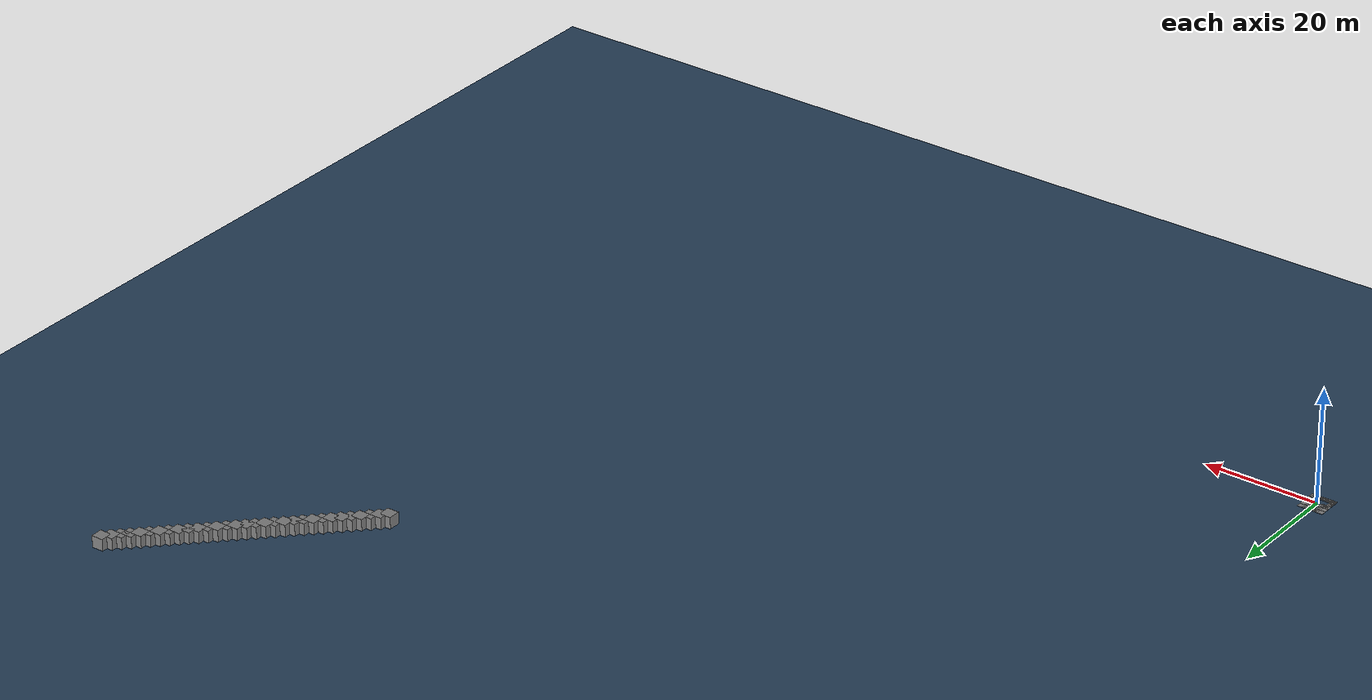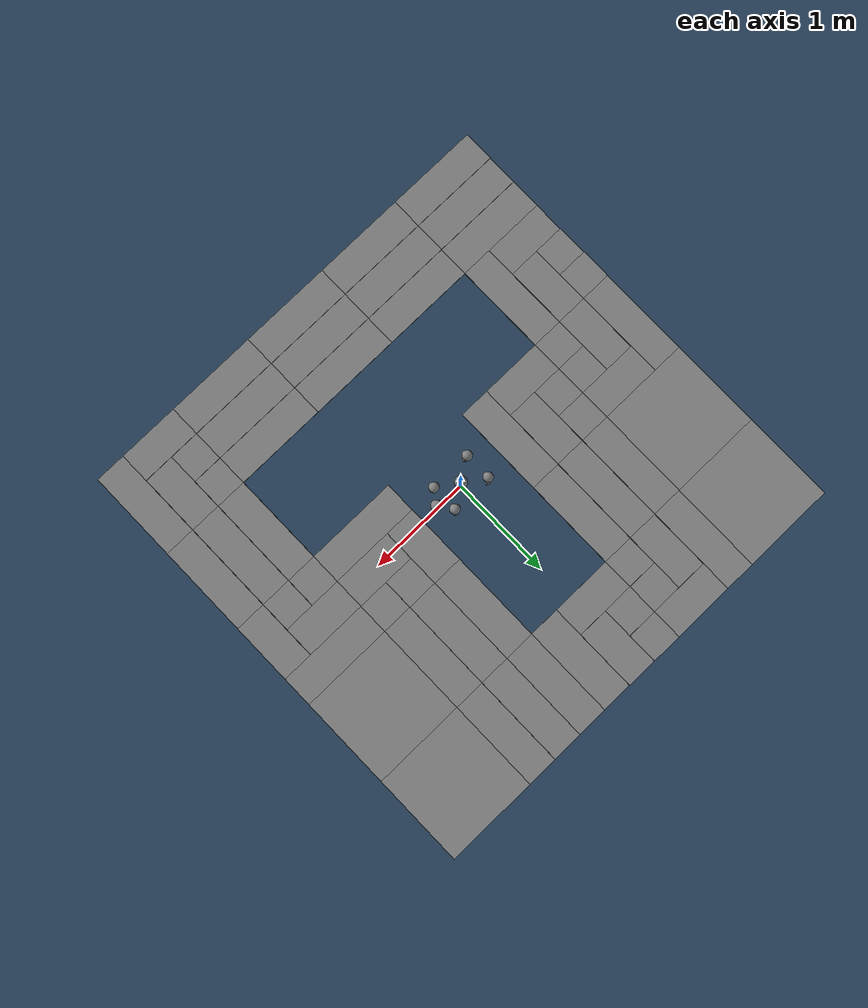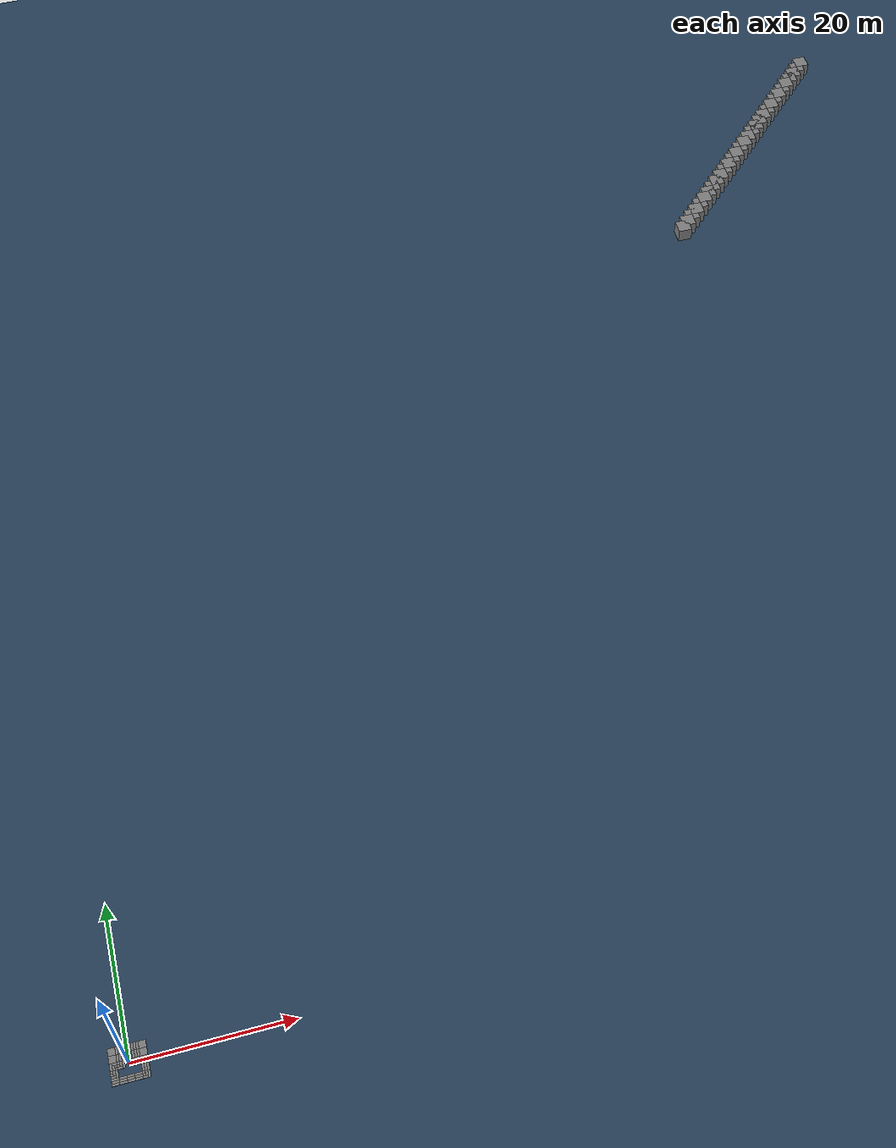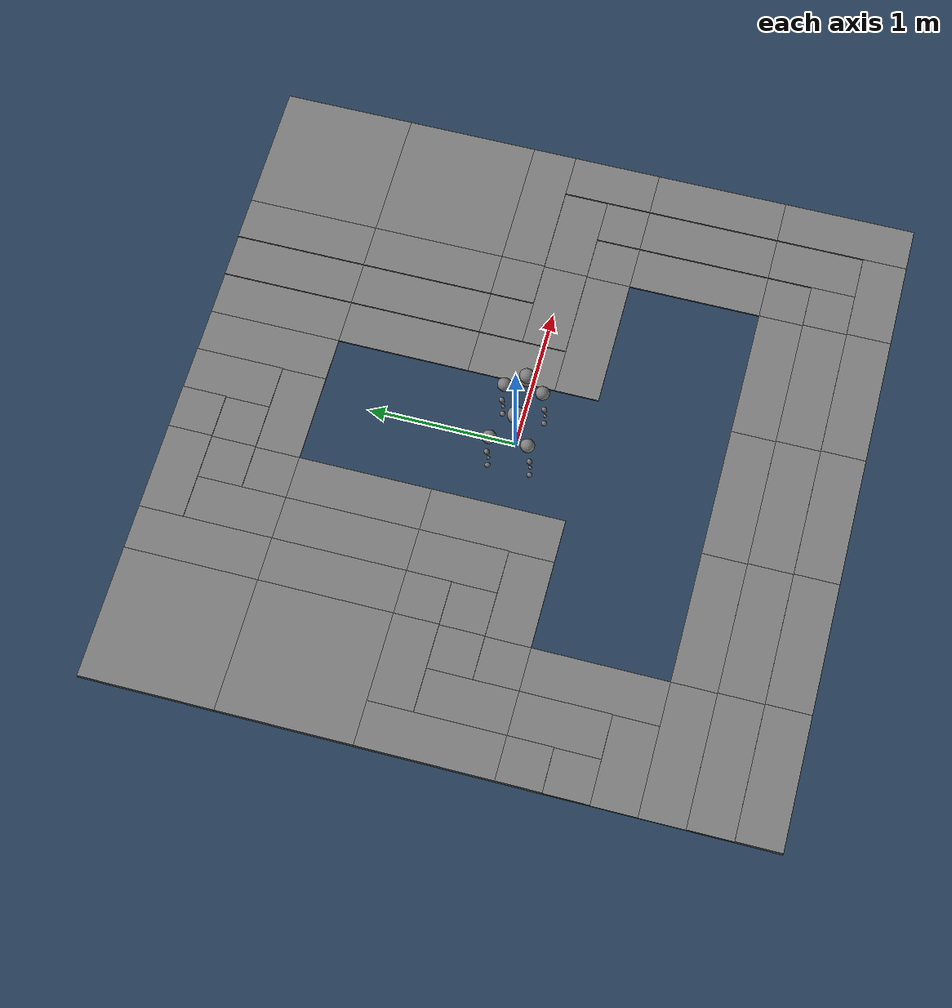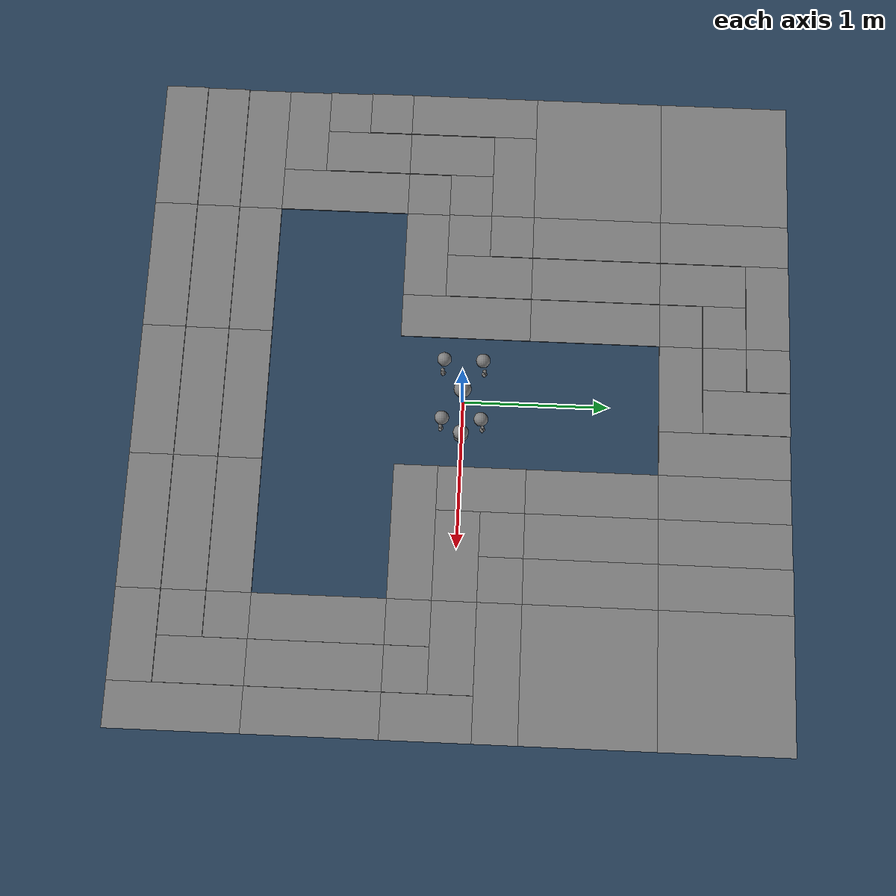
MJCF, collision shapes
<mujoco model="go2 scene">
  <include file="go2_mjx_feetonly.xml" />

  <statistic center="0 0 0.1" extent="0.8" />

  <visual>
    <headlight diffuse="0.6 0.6 0.6" ambient="0.3 0.3 0.3" specular="0 0 0" />
    <rgba haze="0.15 0.25 0.35 1" />
    <global azimuth="-130" elevation="-20" />
  </visual>

  <asset>
    <texture type="skybox" builtin="gradient" rgb1="0.3 0.5 0.7" rgb2="0 0 0" width="512" height="3072" />
    <texture type="2d" name="groundplane" builtin="checker" mark="edge" rgb1="0.2 0.3 0.4" rgb2="0.1 0.2 0.3" markrgb="0.8 0.8 0.8" width="300" height="300" />
    <material name="groundplane" texture="groundplane" texuniform="true" texrepeat="5 5" reflectance="0.2" />
  </asset>

  <worldbody>
    <light pos="0 0 1.5" dir="0 0 -1" directional="true" />
    <geom name="floor" pos="0 0 0" size="0 0 0.01" type="plane" contype="2" conaffinity="1" material="groundplane" />
  <body pos="-1.7999999999999998 -1.5 0.005" quat="0.7071067811865476 0.0 0.0 -0.7071067811865475" name="box_9jnJ1"><geom type="box" size="0.15 0.44999999999999996 0.005" contype="2" conaffinity="1" /></body><body pos="-1.7999999999999998 -1.7999999999999998 0.01" quat="0.7071067811865476 0.0 0.0 -0.7071067811865475" name="box_45oam"><geom type="box" size="0.15 0.44999999999999996 0.01" contype="2" conaffinity="1" /></body><body pos="-1.7999999999999998 -2.0999999999999996 0.015" quat="0.7071067811865476 0.0 0.0 -0.7071067811865475" name="box_oFnhv"><geom type="box" size="0.15 0.44999999999999996 0.015" contype="2" conaffinity="1" /></body><body pos="-2.0999999999999996 -0.6 0.015" quat="1.0 0.0 0.0 0.0" name="box_VjwOJ"><geom type="box" size="0.15 0.15 0.015" contype="2" conaffinity="1" /></body><body pos="-1.7999999999999998 -0.75 0.009999999999999998" quat="1.0 0.0 0.0 0.0" name="box_DNpub"><geom type="box" size="0.15 0.3 0.009999999999999998" contype="2" conaffinity="1" /></body><body pos="-1.4999999999999998 -0.8999999999999999 0.004999999999999998" quat="1.0 0.0 0.0 0.0" name="box_YIF1X"><geom type="box" size="0.15 0.44999999999999996 0.004999999999999998" contype="2" conaffinity="1" /></body><body pos="-2.0999999999999996 -0.8999999999999999 0.009999999999999998" quat="0.7071067811865476 0.0 0.0 0.7071067811865475" name="box_wxRSM"><geom type="box" size="0.15 0.15 0.009999999999999998" contype="2" conaffinity="1" /></body><body pos="-1.9499999999999997 -1.2 0.004999999999999998" quat="0.7071067811865476 0.0 0.0 0.7071067811865475" name="box_MDRM5"><geom type="box" size="0.15 0.3 0.004999999999999998" contype="2" conaffinity="1" /></body><body pos="-1.5 -0.3 0.005" quat="6.123233995736766e-17 0.0 0.0 1.0" name="box_bONH5"><geom type="box" size="0.15 0.15 0.005" contype="2" conaffinity="1" /></body><body pos="-1.7999999999999998 -0.14999999999999994 0.01" quat="6.123233995736766e-17 0.0 0.0 1.0" name="box_fZ7Sx"><geom type="box" size="0.15 0.3 0.01" contype="2" conaffinity="1" /></body><body pos="-2.0999999999999996 9.225055520567842e-17 0.015" quat="6.123233995736766e-17 0.0 0.0 1.0" name="box_7f91A"><geom type="box" size="0.15 0.44999999999999996 0.015" contype="2" conaffinity="1" /></body><body pos="-1.5 4.0204526962694995e-19 0.01" quat="-0.7071067811865475 -0.0 0.0 0.7071067811865476" name="box_x2S1R"><geom type="box" size="0.15 0.15 0.01" contype="2" conaffinity="1" /></body><body pos="-1.65 0.30000000000000004 0.015" quat="-0.7071067811865475 -0.0 0.0 0.7071067811865476" name="box_R6mlR"><geom type="box" size="0.15 0.3 0.015" contype="2" conaffinity="1" /></body><body pos="-1.7999999999999998 0.8999999999999999 0.015" quat="1.0 0.0 0.0 0.0" name="box_6daYD"><geom type="box" size="0.44999999999999996 0.44999999999999996 0.015" contype="2" conaffinity="1" /></body><body pos="-1.7999999999999998 1.7999999999999998 0.015" quat="1.0 0.0 0.0 0.0" name="box_LLP51"><geom type="box" size="0.44999999999999996 0.44999999999999996 0.015" contype="2" conaffinity="1" /></body><body pos="-0.8999999999999999 -1.5 0.005" quat="0.7071067811865476 0.0 0.0 -0.7071067811865475" name="box_At0KV"><geom type="box" size="0.15 0.44999999999999996 0.005" contype="2" conaffinity="1" /></body><body pos="-0.8999999999999999 -1.7999999999999998 0.01" quat="0.7071067811865476 0.0 0.0 -0.7071067811865475" name="box_H8cGs"><geom type="box" size="0.15 0.44999999999999996 0.01" contype="2" conaffinity="1" /></body><body pos="-0.8999999999999999 -2.0999999999999996 0.015" quat="0.7071067811865476 0.0 0.0 -0.7071067811865475" name="box_UGBh3"><geom type="box" size="0.15 0.44999999999999996 0.015" contype="2" conaffinity="1" /></body><body pos="-1.2 0.29999999999999993 0.015" quat="1.0 0.0 0.0 0.0" name="box_K6GsX"><geom type="box" size="0.15 0.15 0.015" contype="2" conaffinity="1" /></body><body pos="-0.8999999999999999 0.14999999999999994 0.009999999999999998" quat="1.0 0.0 0.0 0.0" name="box_PXriU"><geom type="box" size="0.15 0.3 0.009999999999999998" contype="2" conaffinity="1" /></body><body pos="-0.5999999999999999 -5.551115123125783e-17 0.004999999999999998" quat="1.0 0.0 0.0 0.0" name="box_QvRT9"><geom type="box" size="0.15 0.44999999999999996 0.004999999999999998" contype="2" conaffinity="1" /></body><body pos="-1.1999999999999997 -3.714144924404753e-17 0.009999999999999998" quat="0.7071067811865476 0.0 0.0 0.7071067811865475" name="box_LYsFe"><geom type="box" size="0.15 0.15 0.009999999999999998" contype="2" conaffinity="1" /></body><body pos="-1.0499999999999998 -0.30000000000000004 0.004999999999999998" quat="0.7071067811865476 0.0 0.0 0.7071067811865475" name="box_M0nv9"><geom type="box" size="0.15 0.3 0.004999999999999998" contype="2" conaffinity="1" /></body><body pos="-0.6 0.8999999999999999 0.005" quat="6.123233995736766e-17 0.0 0.0 1.0" name="box_LtNYZ"><geom type="box" size="0.15 0.44999999999999996 0.005" contype="2" conaffinity="1" /></body><body pos="-0.8999999999999999 0.8999999999999999 0.01" quat="6.123233995736766e-17 0.0 0.0 1.0" name="box_NoJD6"><geom type="box" size="0.15 0.44999999999999996 0.01" contype="2" conaffinity="1" /></body><body pos="-1.2 0.8999999999999999 0.015" quat="6.123233995736766e-17 0.0 0.0 1.0" name="box_p5Z33"><geom type="box" size="0.15 0.44999999999999996 0.015" contype="2" conaffinity="1" /></body><body pos="-0.6 1.4999999999999998 0.005" quat="6.123233995736766e-17 0.0 0.0 1.0" name="box_0yAZM"><geom type="box" size="0.15 0.15 0.005" contype="2" conaffinity="1" /></body><body pos="-0.8999999999999999 1.65 0.01" quat="6.123233995736766e-17 0.0 0.0 1.0" name="box_cUGpb"><geom type="box" size="0.15 0.3 0.01" contype="2" conaffinity="1" /></body><body pos="-1.2 1.7999999999999998 0.015" quat="6.123233995736766e-17 0.0 0.0 1.0" name="box_zg1q0"><geom type="box" size="0.15 0.44999999999999996 0.015" contype="2" conaffinity="1" /></body><body pos="-0.6 1.7999999999999998 0.01" quat="-0.7071067811865475 -0.0 0.0 0.7071067811865476" name="box_gupoI"><geom type="box" size="0.15 0.15 0.01" contype="2" conaffinity="1" /></body><body pos="-0.7499999999999999 2.0999999999999996 0.015" quat="-0.7071067811865475 -0.0 0.0 0.7071067811865476" name="box_0rmtC"><geom type="box" size="0.15 0.3 0.015" contype="2" conaffinity="1" /></body><body pos="-1.8369701987210294e-17 -1.5 0.005" quat="0.7071067811865476 0.0 0.0 -0.7071067811865475" name="box_hZ9KR"><geom type="box" size="0.15 0.44999999999999996 0.005" contype="2" conaffinity="1" /></body><body pos="0.0 -1.7999999999999998 0.01" quat="0.7071067811865476 0.0 0.0 -0.7071067811865475" name="box_HsLaw"><geom type="box" size="0.15 0.44999999999999996 0.01" contype="2" conaffinity="1" /></body><body pos="1.83697019872103e-17 -2.0999999999999996 0.015" quat="0.7071067811865476 0.0 0.0 -0.7071067811865475" name="box_eSIlp"><geom type="box" size="0.15 0.44999999999999996 0.015" contype="2" conaffinity="1" /></body><body pos="-0.3 2.0999999999999996 0.015" quat="1.0 0.0 0.0 0.0" name="box_VX5rW"><geom type="box" size="0.15 0.15 0.015" contype="2" conaffinity="1" /></body><body pos="0.0 1.9499999999999997 0.009999999999999998" quat="1.0 0.0 0.0 0.0" name="box_OmqXR"><geom type="box" size="0.15 0.3 0.009999999999999998" contype="2" conaffinity="1" /></body><body pos="0.3 1.7999999999999998 0.004999999999999998" quat="1.0 0.0 0.0 0.0" name="box_n22Ae"><geom type="box" size="0.15 0.44999999999999996 0.004999999999999998" contype="2" conaffinity="1" /></body><body pos="-0.29999999999999993 1.7999999999999998 0.009999999999999998" quat="0.7071067811865476 0.0 0.0 0.7071067811865475" name="box_rzPjr"><geom type="box" size="0.15 0.15 0.009999999999999998" contype="2" conaffinity="1" /></body><body pos="-0.14999999999999997 1.4999999999999998 0.004999999999999998" quat="0.7071067811865476 0.0 0.0 0.7071067811865475" name="box_tJPCz"><geom type="box" size="0.15 0.3 0.004999999999999998" contype="2" conaffinity="1" /></body><body pos="0.8999999999999999 -1.5 0.005" quat="0.7071067811865476 0.0 0.0 -0.7071067811865475" name="box_aaxNl"><geom type="box" size="0.15 0.44999999999999996 0.005" contype="2" conaffinity="1" /></body><body pos="0.8999999999999999 -1.7999999999999998 0.01" quat="0.7071067811865476 0.0 0.0 -0.7071067811865475" name="box_3yf2o"><geom type="box" size="0.15 0.44999999999999996 0.01" contype="2" conaffinity="1" /></body><body pos="0.8999999999999999 -2.0999999999999996 0.015" quat="0.7071067811865476 0.0 0.0 -0.7071067811865475" name="box_C7lV3"><geom type="box" size="0.15 0.44999999999999996 0.015" contype="2" conaffinity="1" /></body><body pos="1.1999999999999997 0.3 0.015" quat="0.7071067811865476 0.0 0.0 -0.7071067811865475" name="box_UbLZv"><geom type="box" size="0.15 0.15 0.015" contype="2" conaffinity="1" /></body><body pos="1.0499999999999998 9.184850993605146e-18 0.009999999999999998" quat="0.7071067811865476 0.0 0.0 -0.7071067811865475" name="box_jHvvx"><geom type="box" size="0.15 0.3 0.009999999999999998" contype="2" conaffinity="1" /></body><body pos="0.8999999999999999 -0.3 0.004999999999999998" quat="0.7071067811865476 0.0 0.0 -0.7071067811865475" name="box_ueeUF"><geom type="box" size="0.15 0.44999999999999996 0.004999999999999998" contype="2" conaffinity="1" /></body><body pos="0.8999999999999999 0.29999999999999993 0.009999999999999998" quat="1.0 0.0 0.0 0.0" name="box_DAI5h"><geom type="box" size="0.15 0.15 0.009999999999999998" contype="2" conaffinity="1" /></body><body pos="0.5999999999999999 0.14999999999999994 0.004999999999999998" quat="1.0 0.0 0.0 0.0" name="box_ddux0"><geom type="box" size="0.15 0.3 0.004999999999999998" contype="2" conaffinity="1" /></body><body pos="0.6 0.8999999999999999 0.005" quat="1.0 0.0 0.0 0.0" name="box_AwymQ"><geom type="box" size="0.15 0.44999999999999996 0.005" contype="2" conaffinity="1" /></body><body pos="0.8999999999999999 0.8999999999999999 0.01" quat="1.0 0.0 0.0 0.0" name="box_wJwWq"><geom type="box" size="0.15 0.44999999999999996 0.01" contype="2" conaffinity="1" /></body><body pos="1.2 0.8999999999999999 0.015" quat="1.0 0.0 0.0 0.0" name="box_vArqn"><geom type="box" size="0.15 0.44999999999999996 0.015" contype="2" conaffinity="1" /></body><body pos="0.6 1.7999999999999998 0.005" quat="1.0 0.0 0.0 0.0" name="box_ySZGJ"><geom type="box" size="0.15 0.44999999999999996 0.005" contype="2" conaffinity="1" /></body><body pos="0.8999999999999999 1.7999999999999998 0.01" quat="1.0 0.0 0.0 0.0" name="box_NVLtO"><geom type="box" size="0.15 0.44999999999999996 0.01" contype="2" conaffinity="1" /></body><body pos="1.2 1.7999999999999998 0.015" quat="1.0 0.0 0.0 0.0" name="box_lnxQO"><geom type="box" size="0.15 0.44999999999999996 0.015" contype="2" conaffinity="1" /></body><body pos="1.4999999999999998 -1.5 0.005" quat="1.0 0.0 0.0 0.0" name="box_QPb1Z"><geom type="box" size="0.15 0.15 0.005" contype="2" conaffinity="1" /></body><body pos="1.7999999999999998 -1.65 0.01" quat="1.0 0.0 0.0 0.0" name="box_SCGdQ"><geom type="box" size="0.15 0.3 0.01" contype="2" conaffinity="1" /></body><body pos="2.0999999999999996 -1.7999999999999998 0.015" quat="1.0 0.0 0.0 0.0" name="box_50MvJ"><geom type="box" size="0.15 0.44999999999999996 0.015" contype="2" conaffinity="1" /></body><body pos="1.5 -1.7999999999999998 0.01" quat="0.7071067811865476 0.0 0.0 0.7071067811865475" name="box_rS0y8"><geom type="box" size="0.15 0.15 0.01" contype="2" conaffinity="1" /></body><body pos="1.65 -2.0999999999999996 0.015" quat="0.7071067811865476 0.0 0.0 0.7071067811865475" name="box_2emls"><geom type="box" size="0.15 0.3 0.015" contype="2" conaffinity="1" /></body><body pos="1.5 -0.8999999999999999 0.005" quat="1.0 0.0 0.0 0.0" name="box_e2HIv"><geom type="box" size="0.15 0.44999999999999996 0.005" contype="2" conaffinity="1" /></body><body pos="1.7999999999999998 -0.8999999999999999 0.01" quat="1.0 0.0 0.0 0.0" name="box_yeM2B"><geom type="box" size="0.15 0.44999999999999996 0.01" contype="2" conaffinity="1" /></body><body pos="2.0999999999999996 -0.8999999999999999 0.015" quat="1.0 0.0 0.0 0.0" name="box_53f5b"><geom type="box" size="0.15 0.44999999999999996 0.015" contype="2" conaffinity="1" /></body><body pos="1.5 -0.3 0.005" quat="0.7071067811865476 0.0 0.0 0.7071067811865475" name="box_On5r1"><geom type="box" size="0.15 0.15 0.005" contype="2" conaffinity="1" /></body><body pos="1.65 9.184850993605146e-18 0.01" quat="0.7071067811865476 0.0 0.0 0.7071067811865475" name="box_AZhN1"><geom type="box" size="0.15 0.3 0.01" contype="2" conaffinity="1" /></body><body pos="1.7999999999999998 0.3 0.015" quat="0.7071067811865476 0.0 0.0 0.7071067811865475" name="box_s5d73"><geom type="box" size="0.15 0.44999999999999996 0.015" contype="2" conaffinity="1" /></body><body pos="1.7999999999999998 -0.29999999999999993 0.01" quat="6.123233995736766e-17 0.0 0.0 1.0" name="box_G7IjM"><geom type="box" size="0.15 0.15 0.01" contype="2" conaffinity="1" /></body><body pos="2.0999999999999996 -0.14999999999999997 0.015" quat="6.123233995736766e-17 0.0 0.0 1.0" name="box_JlsSC"><geom type="box" size="0.15 0.3 0.015" contype="2" conaffinity="1" /></body><body pos="1.7999999999999998 0.8999999999999999 0.015" quat="1.0 0.0 0.0 0.0" name="box_fsoqh"><geom type="box" size="0.44999999999999996 0.44999999999999996 0.015" contype="2" conaffinity="1" /></body><body pos="1.7999999999999998 1.7999999999999998 0.015" quat="1.0 0.0 0.0 0.0" name="box_gYswy"><geom type="box" size="0.44999999999999996 0.44999999999999996 0.015" contype="2" conaffinity="1" /></body><body pos="100 100 10" quat="1.0 0.0 0.0 0.0" name="box_koCgX"><geom type="box" size="1.0 1.0 1.0" contype="2" conaffinity="1" /></body><body pos="101 101 10" quat="1.0 0.0 0.0 0.0" name="box_7aJi6"><geom type="box" size="1.0 1.0 1.0" contype="2" conaffinity="1" /></body><body pos="102 102 10" quat="1.0 0.0 0.0 0.0" name="box_r0X0l"><geom type="box" size="1.0 1.0 1.0" contype="2" conaffinity="1" /></body><body pos="103 103 10" quat="1.0 0.0 0.0 0.0" name="box_TMq3H"><geom type="box" size="1.0 1.0 1.0" contype="2" conaffinity="1" /></body><body pos="104 104 10" quat="1.0 0.0 0.0 0.0" name="box_Oif1r"><geom type="box" size="1.0 1.0 1.0" contype="2" conaffinity="1" /></body><body pos="105 105 10" quat="1.0 0.0 0.0 0.0" name="box_XfZg9"><geom type="box" size="1.0 1.0 1.0" contype="2" conaffinity="1" /></body><body pos="106 106 10" quat="1.0 0.0 0.0 0.0" name="box_LvFqS"><geom type="box" size="1.0 1.0 1.0" contype="2" conaffinity="1" /></body><body pos="107 107 10" quat="1.0 0.0 0.0 0.0" name="box_FGacP"><geom type="box" size="1.0 1.0 1.0" contype="2" conaffinity="1" /></body><body pos="108 108 10" quat="1.0 0.0 0.0 0.0" name="box_pkKBo"><geom type="box" size="1.0 1.0 1.0" contype="2" conaffinity="1" /></body><body pos="109 109 10" quat="1.0 0.0 0.0 0.0" name="box_RFf75"><geom type="box" size="1.0 1.0 1.0" contype="2" conaffinity="1" /></body><body pos="110 110 10" quat="1.0 0.0 0.0 0.0" name="box_qGVTY"><geom type="box" size="1.0 1.0 1.0" contype="2" conaffinity="1" /></body><body pos="111 111 10" quat="1.0 0.0 0.0 0.0" name="box_Hx0aW"><geom type="box" size="1.0 1.0 1.0" contype="2" conaffinity="1" /></body><body pos="112 112 10" quat="1.0 0.0 0.0 0.0" name="box_hJc4m"><geom type="box" size="1.0 1.0 1.0" contype="2" conaffinity="1" /></body><body pos="113 113 10" quat="1.0 0.0 0.0 0.0" name="box_ohSiP"><geom type="box" size="1.0 1.0 1.0" contype="2" conaffinity="1" /></body><body pos="114 114 10" quat="1.0 0.0 0.0 0.0" name="box_Sa3o6"><geom type="box" size="1.0 1.0 1.0" contype="2" conaffinity="1" /></body><body pos="115 115 10" quat="1.0 0.0 0.0 0.0" name="box_U2ocN"><geom type="box" size="1.0 1.0 1.0" contype="2" conaffinity="1" /></body><body pos="116 116 10" quat="1.0 0.0 0.0 0.0" name="box_MwAqC"><geom type="box" size="1.0 1.0 1.0" contype="2" conaffinity="1" /></body><body pos="117 117 10" quat="1.0 0.0 0.0 0.0" name="box_ab2t0"><geom type="box" size="1.0 1.0 1.0" contype="2" conaffinity="1" /></body><body pos="118 118 10" quat="1.0 0.0 0.0 0.0" name="box_mvzNk"><geom type="box" size="1.0 1.0 1.0" contype="2" conaffinity="1" /></body><body pos="119 119 10" quat="1.0 0.0 0.0 0.0" name="box_cARUV"><geom type="box" size="1.0 1.0 1.0" contype="2" conaffinity="1" /></body><body pos="120 120 10" quat="1.0 0.0 0.0 0.0" name="box_Z6X44"><geom type="box" size="1.0 1.0 1.0" contype="2" conaffinity="1" /></body><body pos="121 121 10" quat="1.0 0.0 0.0 0.0" name="box_b6Ps7"><geom type="box" size="1.0 1.0 1.0" contype="2" conaffinity="1" /></body><body pos="122 122 10" quat="1.0 0.0 0.0 0.0" name="box_1iRIS"><geom type="box" size="1.0 1.0 1.0" contype="2" conaffinity="1" /></body><body pos="123 123 10" quat="1.0 0.0 0.0 0.0" name="box_AJxPN"><geom type="box" size="1.0 1.0 1.0" contype="2" conaffinity="1" /></body><body pos="124 124 10" quat="1.0 0.0 0.0 0.0" name="box_zKKnS"><geom type="box" size="1.0 1.0 1.0" contype="2" conaffinity="1" /></body><body pos="125 125 10" quat="1.0 0.0 0.0 0.0" name="box_0t84G"><geom type="box" size="1.0 1.0 1.0" contype="2" conaffinity="1" /></body><body pos="126 126 10" quat="1.0 0.0 0.0 0.0" name="box_B9cfk"><geom type="box" size="1.0 1.0 1.0" contype="2" conaffinity="1" /></body><body pos="127 127 10" quat="1.0 0.0 0.0 0.0" name="box_wQI8Q"><geom type="box" size="1.0 1.0 1.0" contype="2" conaffinity="1" /></body><body pos="128 128 10" quat="1.0 0.0 0.0 0.0" name="box_aD7Gt"><geom type="box" size="1.0 1.0 1.0" contype="2" conaffinity="1" /></body><body pos="129 129 10" quat="1.0 0.0 0.0 0.0" name="box_CisGq"><geom type="box" size="1.0 1.0 1.0" contype="2" conaffinity="1" /></body><body pos="130 130 10" quat="1.0 0.0 0.0 0.0" name="box_xro45"><geom type="box" size="1.0 1.0 1.0" contype="2" conaffinity="1" /></body></worldbody>
</mujoco>

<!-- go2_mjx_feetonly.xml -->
<mujoco model="go2">
  <compiler angle="radian" meshdir="assets" autolimits="true"/>

  <option cone="pyramidal" impratio="100" iterations="5" ls_iterations="5">
    <flag eulerdamp="disable"/>
  </option>
 <custom>
    <!-- Potentially optimal -->
    <!-- Safe-->
    <numeric data="4" name="max_contact_points"/>
    <numeric data="25" name="max_geom_pairs"/>
 </custom>
 <option iterations="5" ls_iterations="5" timestep="0.004" integrator="Euler">
    <flag eulerdamp="disable"/>
  </option>
  <default>
    <default class="go2">
      <geom friction="0.6" margin="0.001" condim="1" contype="0" conaffinity="0"/>

      <joint axis="0 1 0" damping="2" armature="0.01"/>
      <general forcerange="-24 24" biastype="affine" gainprm="50 0 0" biasprm="0 -50 -0.5"/>

      <default class="abduction">
        <joint axis="1 0 0" range="-1.0472 1.0472"/>
        <general ctrlrange="-0.9472 0.9472"/>
      </default>
      <default class="hip">
        <joint range="-1.5708 3.4907"/>
        <general ctrlrange="-1.4 2.5"/>
      </default>
      <default class="knee">
        <joint range="-2.7227 -0.83776"/>
        <general ctrlrange="-2.6227 -0.84776"/>
      </default>
      <default class="visual">
        <geom type="mesh" contype="0" conaffinity="0" group="2"/>
      </default>
      <default class="go2foot">
        <site group="1" pos="-0.002 0 -0.213"/>
        <geom rgba="0.231373 0.380392 0.705882 1"/>
      </default>
      <default class="collision">
        <geom group="3"/>
        <default class="foot">
          <geom type="sphere" size="0.0175" pos="-0.002 0 -0.213" solimp="0.015 1 0.031" contype="1" conaffinity="2" margin="-0.001"/>

        </default>
      </default>
    </default>
  </default>

  <asset>
    <material name="metal" rgba=".9 .95 .95 1"/>
    <material name="black" rgba="0 0 0 1"/>
    <material name="white" rgba="1 1 1 1"/>
    <material name="gray" rgba="0.671705 0.692426 0.774270 1"/>

    <mesh file="base_0.obj"/>
    <mesh file="base_1.obj"/>
    <mesh file="base_2.obj"/>
    <mesh file="base_3.obj"/>
    <mesh file="base_4.obj"/>
    <mesh file="hip_0.obj"/>
    <mesh file="hip_1.obj"/>
    <mesh file="thigh_0.obj"/>
    <mesh file="thigh_1.obj"/>
    <mesh file="thigh_mirror_0.obj"/>
    <mesh file="thigh_mirror_1.obj"/>
    <mesh file="calf_0.obj"/>
    <mesh file="calf_1.obj"/>
    <mesh file="calf_mirror_0.obj"/>
    <mesh file="calf_mirror_1.obj"/>
    <mesh file="foot.obj"/>
  </asset>

  <worldbody>
    <body name="base" pos="0 0 0.445" childclass="go2">
      <camera name="track" pos="0.846 -1.465 0.916" xyaxes="0.866 0.500 0.000 -0.171 0.296 0.940" mode="trackcom"/>
      <inertial pos="0.021112 0 -0.005366" quat="-0.000543471 0.713435 -0.00173769 0.700719" mass="6.921"
        diaginertia="0.107027 0.0980771 0.0244531"/>
      <freejoint/>
      <geom mesh="base_0" material="black" class="visual"/>
      <geom mesh="base_1" material="black" class="visual"/>
      <geom mesh="base_2" material="black" class="visual"/>
      <geom mesh="base_3" material="white" class="visual"/>
      <geom mesh="base_4" material="gray" class="visual"/>
      <geom size="0.057 0.04675 0.057" class="collision"/>
      <geom size="0.05 0.045" pos="0.285 0 0.01" class="collision"/>
      <geom size="0.047" pos="0.293 0 -0.06" class="collision"/>
      <site name="imu" pos="-0.02557 0 0.04232"/>
      <body name="FL_hip" pos="0.1934 0.0465 0">
        <inertial pos="-0.0054 0.00194 -0.000105" quat="0.497014 0.499245 0.505462 0.498237" mass="0.678"
          diaginertia="0.00088403 0.000596003 0.000479967"/>
        <joint name="FL_hip_joint" class="abduction"/>
        <geom mesh="hip_0" material="metal" class="visual"/>
        <geom mesh="hip_1" material="gray" class="visual"/>
        <geom size="0.046 0.02" pos="0 0.08 0" quat="1 1 0 0" class="collision"/>
        <body name="FL_thigh" pos="0 0.0955 0">
          <inertial pos="-0.00374 -0.0223 -0.0327" quat="0.829533 0.0847635 -0.0200632 0.551623" mass="1.152"
            diaginertia="0.00594973 0.00584149 0.000878787"/>
          <joint name="FL_thigh_joint" class="hip"/>
          <geom mesh="thigh_0" material="metal" class="visual"/>
          <geom mesh="thigh_1" material="gray" class="visual"/>
          <geom size="0.017 0.01225 0.017" pos="-0.015 0 -0.1955" quat="0.707107 0 0.707107 0" class="collision"/>
          <body name="FL_calf" pos="0 0 -0.213">
            <inertial pos="0.00629595 -0.000622121 -0.141417" quat="0.710672 0.00154099 -0.00450087 0.703508"
              mass="0.241352" diaginertia="0.0014901 0.00146356 5.31397e-05"/>
            <joint name="FL_calf_joint" class="knee"/>
            <geom mesh="calf_0" material="gray" class="visual"/>
            <geom mesh="calf_1" material="black" class="visual"/>
            <geom size="0.012 0.06" pos="0.008 0 -0.06" quat="0.994493 0 -0.104807 0" class="collision"/>
            <geom size="0.011 0.0325" pos="0.02 0 -0.148" quat="0.999688 0 0.0249974 0" class="collision"/>
            <geom pos="0 0 -0.213" mesh="foot" class="visual" material="black"/>
            <geom name="FL" class="foot"/>
            <site name="FL_foot" class="go2foot"/>
          </body>
        </body>
      </body>
      <body name="FR_hip" pos="0.1934 -0.0465 0">
        <inertial pos="-0.0054 -0.00194 -0.000105" quat="0.498237 0.505462 0.499245 0.497014" mass="0.678"
          diaginertia="0.00088403 0.000596003 0.000479967"/>
        <joint name="FR_hip_joint" class="abduction"/>
        <geom mesh="hip_0" material="metal" class="visual" quat="4.63268e-05 1 0 0"/>
        <geom mesh="hip_1" material="gray" class="visual" quat="4.63268e-05 1 0 0"/>
        <geom size="0.046 0.02" pos="0 -0.08 0" quat="0.707107 0.707107 0 0" class="collision"/>
        <body name="FR_thigh" pos="0 -0.0955 0">
          <inertial pos="-0.00374 0.0223 -0.0327" quat="0.551623 -0.0200632 0.0847635 0.829533" mass="1.152"
            diaginertia="0.00594973 0.00584149 0.000878787"/>
          <joint name="FR_thigh_joint" class="hip"/>
          <geom mesh="thigh_mirror_0" material="metal" class="visual"/>
          <geom mesh="thigh_mirror_1" material="gray" class="visual"/>
          <geom size="0.017 0.01225 0.017" pos="-0.015 0 -0.1955" quat="0.707107 0 0.707107 0" class="collision"/>
          <body name="FR_calf" pos="0 0 -0.213">
            <inertial pos="0.00629595 0.000622121 -0.141417" quat="0.703508 -0.00450087 0.00154099 0.710672"
              mass="0.241352" diaginertia="0.0014901 0.00146356 5.31397e-05"/>
            <joint name="FR_calf_joint" class="knee"/>
            <geom mesh="calf_mirror_0" material="gray" class="visual"/>
            <geom mesh="calf_mirror_1" material="black" class="visual"/>
            <geom size="0.013 0.06" pos="0.01 0 -0.06" quat="0.995004 0 -0.0998334 0" class="collision"/>
            <geom size="0.011 0.0325" pos="0.02 0 -0.148" quat="0.999688 0 0.0249974 0" class="collision"/>
            <geom pos="0 0 -0.213" mesh="foot" class="visual" material="black"/>
            <geom name="FR" class="foot"/>
            <site name="FR_foot" class="go2foot"/>
          </body>
        </body>
      </body>
      <body name="RL_hip" pos="-0.1934 0.0465 0">
        <inertial pos="0.0054 0.00194 -0.000105" quat="0.505462 0.498237 0.497014 0.499245" mass="0.678"
          diaginertia="0.00088403 0.000596003 0.000479967"/>
        <joint name="RL_hip_joint" class="abduction"/>
        <geom mesh="hip_0" material="metal" class="visual" quat="4.63268e-05 0 1 0"/>
        <geom mesh="hip_1" material="gray" class="visual" quat="4.63268e-05 0 1 0"/>
        <geom size="0.046 0.02" pos="0 0.08 0" quat="0.707107 0.707107 0 0" class="collision"/>
        <body name="RL_thigh" pos="0 0.0955 0">
          <inertial pos="-0.00374 -0.0223 -0.0327" quat="0.829533 0.0847635 -0.0200632 0.551623" mass="1.152"
            diaginertia="0.00594973 0.00584149 0.000878787"/>
          <joint name="RL_thigh_joint" class="hip"/>
          <geom mesh="thigh_0" material="metal" class="visual"/>
          <geom mesh="thigh_1" material="gray" class="visual"/>
          <geom size="0.017 0.01225 0.017" pos="-0.015 0 -0.1955" quat="0.707107 0 0.707107 0" class="collision"/>
          <body name="RL_calf" pos="0 0 -0.213">
            <inertial pos="0.00629595 -0.000622121 -0.141417" quat="0.710672 0.00154099 -0.00450087 0.703508"
              mass="0.241352" diaginertia="0.0014901 0.00146356 5.31397e-05"/>
            <joint name="RL_calf_joint" class="knee"/>
            <geom mesh="calf_0" material="gray" class="visual"/>
            <geom mesh="calf_1" material="black" class="visual"/>
            <geom size="0.013 0.06" pos="0.01 0 -0.06" quat="0.995004 0 -0.0998334 0" class="collision"/>
            <geom size="0.011 0.0325" pos="0.02 0 -0.148" quat="0.999688 0 0.0249974 0" class="collision"/>
            <geom pos="0 0 -0.213" mesh="foot" class="visual" material="black"/>
            <geom name="RL" class="foot"/>
            <site name="RL_foot" class="go2foot"/>
          </body>
        </body>
      </body>
      <body name="RR_hip" pos="-0.1934 -0.0465 0">
        <inertial pos="0.0054 -0.00194 -0.000105" quat="0.499245 0.497014 0.498237 0.505462" mass="0.678"
          diaginertia="0.00088403 0.000596003 0.000479967"/>
        <joint name="RR_hip_joint" class="abduction"/>
        <geom mesh="hip_0" material="metal" class="visual" quat="2.14617e-09 4.63268e-05 4.63268e-05 -1"/>
        <geom mesh="hip_1" material="gray" class="visual" quat="2.14617e-09 4.63268e-05 4.63268e-05 -1"/>
        <geom size="0.046 0.02" pos="0 -0.08 0" quat="0.707107 0.707107 0 0" class="collision"/>
        <body name="RR_thigh" pos="0 -0.0955 0">
          <inertial pos="-0.00374 0.0223 -0.0327" quat="0.551623 -0.0200632 0.0847635 0.829533" mass="1.152"
            diaginertia="0.00594973 0.00584149 0.000878787"/>
          <joint name="RR_thigh_joint" class="hip"/>
          <geom mesh="thigh_mirror_0" material="metal" class="visual"/>
          <geom mesh="thigh_mirror_1" material="gray" class="visual"/>
          <geom size="0.017 0.01225 0.017" pos="-0.015 0 -0.1955" quat="0.707107 0 0.707107 0" class="collision"/>
          <body name="RR_calf" pos="0 0 -0.213">
            <inertial pos="0.00629595 0.000622121 -0.141417" quat="0.703508 -0.00450087 0.00154099 0.710672"
              mass="0.241352" diaginertia="0.0014901 0.00146356 5.31397e-05"/>
            <joint name="RR_calf_joint" class="knee"/>
            <geom mesh="calf_mirror_0" material="gray" class="visual"/>
            <geom mesh="calf_mirror_1" material="black" class="visual"/>
            <geom size="0.013 0.06" pos="0.01 0 -0.06" quat="0.995004 0 -0.0998334 0" class="collision"/>
            <geom size="0.011 0.0325" pos="0.02 0 -0.148" quat="0.999688 0 0.0249974 0" class="collision"/>
            <geom pos="0 0 -0.213" mesh="foot" class="visual" material="black"/>
            <geom name="RR" class="foot"/>
            <site name="RR_foot" class="go2foot"/>
          </body>
        </body>
      </body>
    </body>
  </worldbody>

  <actuator>
    <position class="abduction" name="FR_hip" joint="FR_hip_joint"/>
    <position class="hip" name="FR_thigh" joint="FR_thigh_joint"/>
    <position class="knee" name="FR_calf" joint="FR_calf_joint"/>
    <position class="abduction" name="FL_hip" joint="FL_hip_joint"/>
    <position class="hip" name="FL_thigh" joint="FL_thigh_joint"/>
    <position class="knee" name="FL_calf" joint="FL_calf_joint"/>
    <position class="abduction" name="RR_hip" joint="RR_hip_joint"/>
    <position class="hip" name="RR_thigh" joint="RR_thigh_joint"/>
    <position class="knee" name="RR_calf" joint="RR_calf_joint"/>
    <position class="abduction" name="RL_hip" joint="RL_hip_joint"/>
    <position class="hip" name="RL_thigh" joint="RL_thigh_joint"/>
    <position class="knee" name="RL_calf" joint="RL_calf_joint"/>
  </actuator>

  <sensor>
    <gyro site="imu" name="gyro"/>
    <accelerometer site="imu" name="accelerometer"/>
    <framequat objtype="site" objname="imu" name="orientation"/>
    <framepos objtype="site" objname="imu" name="global_position"/>
    <framelinvel objtype="site" objname="imu" name="global_linvel"/>
    <frameangvel objtype="site" objname="imu" name="global_angvel"/>
    <!-- returns local velocity of robot -->
    <velocimeter site="imu" name="local_linvel"/>
    <framezaxis objtype="site" objname="imu" name="upvector"/>
    <framepos objtype="site" objname="FR_foot" name="FR_pos" reftype="site" refname="imu"/>
    <framepos objtype="site" objname="FL_foot" name="FL_pos" reftype="site" refname="imu"/>
    <framepos objtype="site" objname="RR_foot" name="RR_pos" reftype="site" refname="imu"/>
    <framepos objtype="site" objname="RL_foot" name="RL_pos" reftype="site" refname="imu"/>
    <framelinvel objtype="site" objname="FR_foot" name="FR_foot_global_linvel"/>
    <framelinvel objtype="site" objname="FL_foot" name="FL_foot_global_linvel"/>
    <framelinvel objtype="site" objname="RR_foot" name="RR_foot_global_linvel"/>
    <framelinvel objtype="site" objname="RL_foot" name="RL_foot_global_linvel"/>

  </sensor>
  <!-- short -->
  <keyframe>
    <key name="home" qpos="0 0 0.28 1 0 0 0 0 0.9 -1.8 0 0.9 -1.8 0 0.9 -1.8 0 0.9 -1.8"
      ctrl="0 0.9 -1.8 0 0.9 -1.8 0 0.9 -1.8 0 0.9 -1.8"/>
  </keyframe>
  <!-- tall -->
  <!-- other -->
</mujoco>
